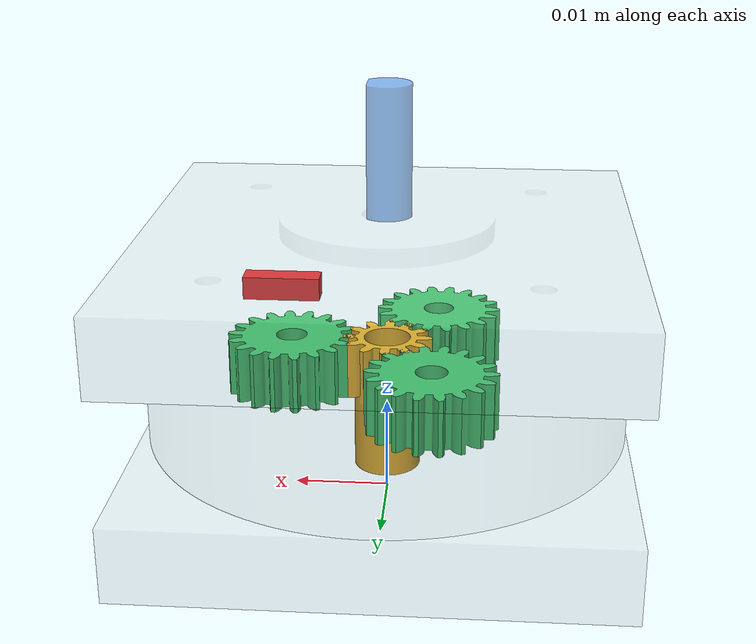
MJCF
<mujoco model="planetary_inverted_viewer">

  <compiler meshdir="out" angle="degree" autolimits="true"/>
  <option gravity="0 0 0"/>

  <asset>
    <mesh name="base"           file="base.stl"           scale="0.001 0.001 0.001"/>
    <mesh name="body"           file="body.stl"           scale="0.001 0.001 0.001"/>
    <mesh name="sun"            file="sun.stl"            scale="0.001 0.001 0.001"/>
    <mesh name="planet"         file="planet.stl"         scale="0.001 0.001 0.001"/>
    <mesh name="carrier_bottom" file="carrier_bottom.stl" scale="0.001 0.001 0.001"/>
    <mesh name="carrier_top"    file="carrier_top.stl"    scale="0.001 0.001 0.001"/>
    <mesh name="cap"            file="cap.stl"            scale="0.001 0.001 0.001"/>
    <material name="case" rgba="0.70 0.72 0.75 0.12"/>
    <material name="sun"  rgba="0.95 0.72 0.10 1"/>
    <material name="plan" rgba="0.20 0.80 0.40 1"/>
    <material name="carr" rgba="0.20 0.50 0.92 0.55"/>
    <material name="mark" rgba="0.90 0.10 0.10 1"/>
  </asset>

  <worldbody>
    <light pos="0.05 -0.05 0.13" dir="-0.4 0.4 -1"/>
    <camera name="iso" pos="0.065 -0.065 0.065" xyaxes="0.7 0.7 0 -0.4 0.4 0.82"/>

    <!-- fixed shell: separate NEMA base + ring body + end cap -->
    <geom type="mesh" mesh="base" material="case" contype="0" conaffinity="0"/>
    <geom type="mesh" mesh="body" pos="0 0 0.008" material="case" contype="0" conaffinity="0"/>
    <geom type="mesh" mesh="cap" pos="0 0 0.021" material="case" contype="0" conaffinity="0"/>

    <!-- sun input: spins ratio x about the main axis -->
    <body name="sun_body" pos="0 0 0.00295">
      <joint name="joint_sun" type="hinge" axis="0 0 1"/>
      <geom type="mesh" mesh="sun" material="sun" contype="0" conaffinity="0"/>
    </body>

    <!-- output carrier cage: 1x slow output; hub, planets and the shaft co-rotate -->
    <body name="carrier_body" pos="0 0 0">
      <joint name="joint_out" type="hinge" axis="0 0 1"/>
      <geom type="mesh" mesh="carrier_bottom" material="carr" pos="0 0 0.00295" contype="0" conaffinity="0"/>
      <geom type="mesh" mesh="carrier_top"    material="carr" pos="0 0 0.018" contype="0" conaffinity="0"/>
      <geom type="box" pos="0.011 0 0.023" size="0.004 0.0012 0.0012" material="mark" contype="0" conaffinity="0"/>

      <!-- 3 planets ride their rollers on the carrier (gear plane z = gear_z = 0.0105) -->
      <body name="planet0_body" pos="0.010155 0 0.0115">
        <joint name="joint_planet0" type="hinge" axis="0 0 1"/>
        <geom type="mesh" mesh="planet" material="plan" contype="0" conaffinity="0"/>
      </body>
      <body name="planet1_body" pos="-0.0050775 0.0087911 0.0115">
        <joint name="joint_planet1" type="hinge" axis="0 0 1"/>
        <geom type="mesh" mesh="planet" material="plan" contype="0" conaffinity="0"/>
      </body>
      <body name="planet2_body" pos="-0.0050775 -0.0087911 0.0115">
        <joint name="joint_planet2" type="hinge" axis="0 0 1"/>
        <geom type="mesh" mesh="planet" material="plan" contype="0" conaffinity="0"/>
      </body>
    </body>
  </worldbody>
</mujoco>
